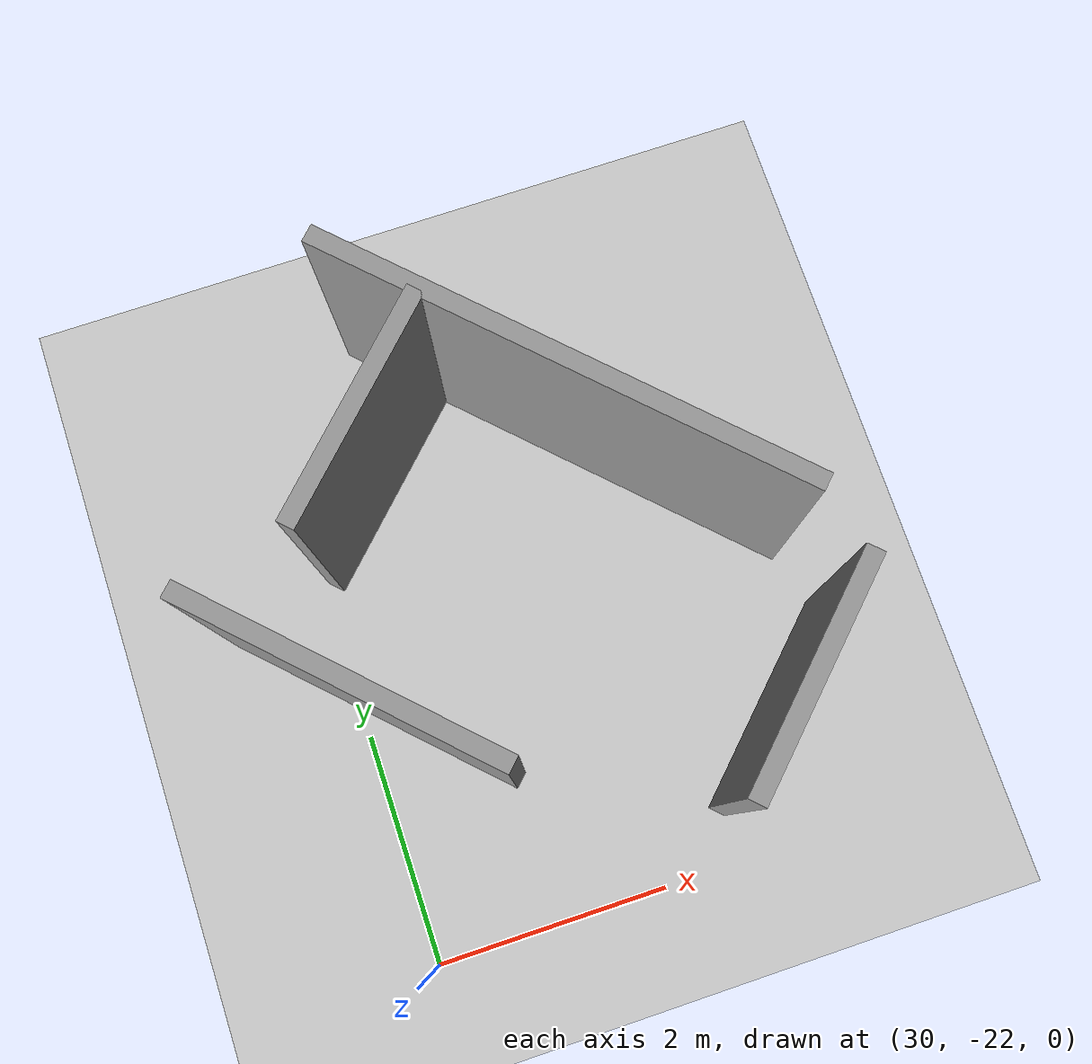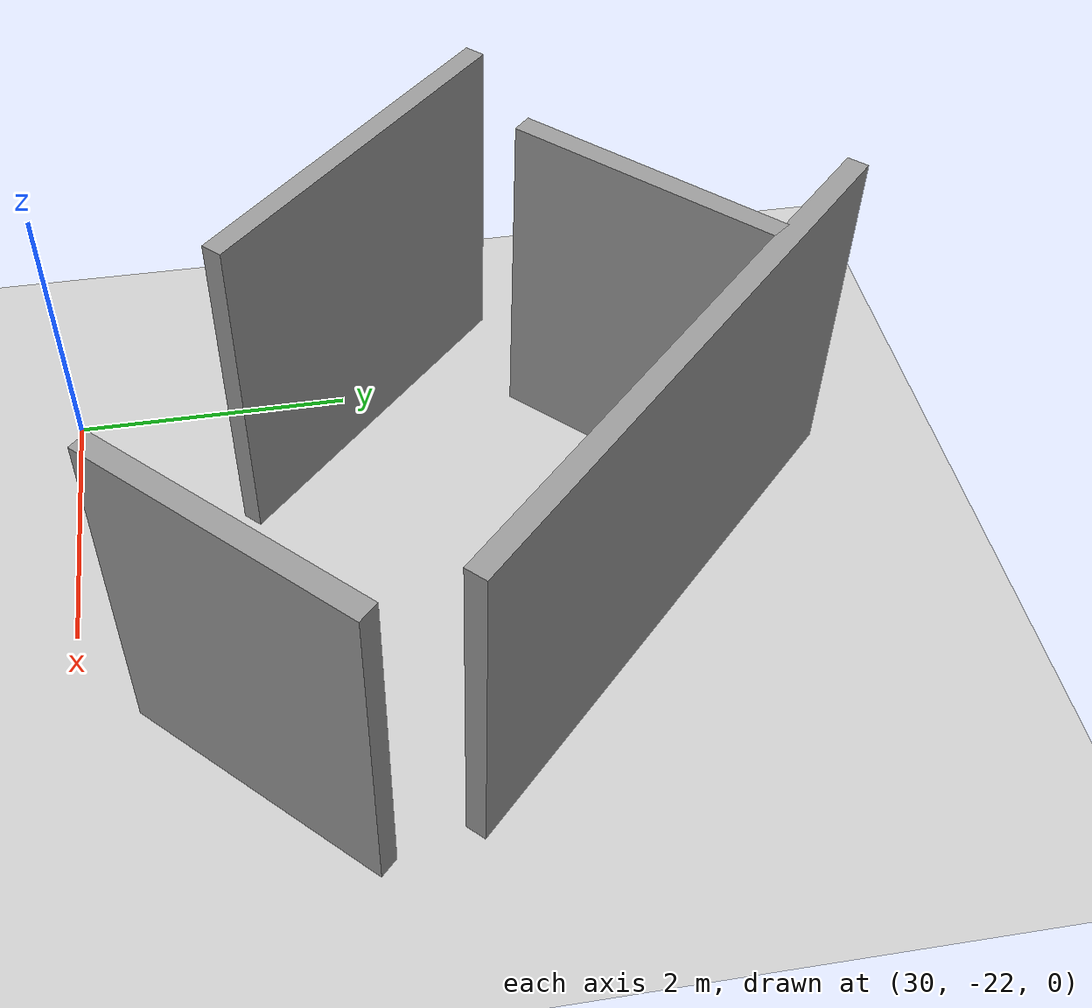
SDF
<sdf version="1.6">
 <world name="default">
  <model name="ground_plane">
   <static>1</static>
   <link name="link">
    <collision name="collision">
     <geometry><plane><normal>0 0 1</normal><size>100 100</size></plane></geometry>
     <surface><friction><ode><mu>100</mu><mu2>50</mu2></ode></friction></surface>
    </collision>
    <visual name="visual">
     <cast_shadows>0</cast_shadows>
     <geometry><plane><normal>0 0 1</normal><size>100 100</size></plane></geometry>
     <material>
      <script><uri>file://media/materials/scripts/gazebo.material</uri><name>Gazebo/Grey</name></script>
     </material>
    </visual>
   </link>
  </model>
  <model name="obs2_5">
   <pose>31.6066 -19.0501 0 0 -0 0</pose>
   <link name="Wall_0">
    <collision name="Wall_0_Collision">
     <geometry><box><size>2 0.15 2.5</size></box></geometry>
     <pose>0 0 1.25 0 -0 0</pose>
    </collision>
    <visual name="Wall_0_Visual">
     <pose>0 0 1.25 0 -0 0</pose>
     <geometry><box><size>2 0.15 2.5</size></box></geometry>
     <material>
      <script><uri>file://media/materials/scripts/gazebo.material</uri><name>Gazebo/Grey</name></script>
      <ambient>1 1 1 1</ambient>
     </material>
    </visual>
    <pose>-0.796332 1.10862 0 0 -0 0.785398</pose>
   </link>
   <link name="Wall_2">
    <collision name="Wall_2_Collision">
     <geometry><box><size>4.25 0.15 2.5</size></box></geometry>
     <pose>0 0 1.25 0 -0 0</pose>
    </collision>
    <visual name="Wall_2_Visual">
     <pose>0 0 1.25 0 -0 0</pose>
     <geometry><box><size>4.25 0.15 2.5</size></box></geometry>
     <material>
      <script><uri>file://media/materials/scripts/gazebo.material</uri><name>Gazebo/Grey</name></script>
      <ambient>1 1 1 1</ambient>
     </material>
    </visual>
    <pose>0.773928 0.982661 0 0 0 -0.785398</pose>
   </link>
   <link name="Wall_4">
    <collision name="Wall_4_Collision">
     <geometry><box><size>2.75 0.15 2.5</size></box></geometry>
     <pose>0 0 1.25 0 -0 0</pose>
    </collision>
    <visual name="Wall_4_Visual">
     <pose>0 0 1.25 0 -0 0</pose>
     <geometry><box><size>2.75 0.15 2.5</size></box></geometry>
     <material>
      <script><uri>file://media/materials/scripts/gazebo.material</uri><name>Gazebo/Grey</name></script>
      <ambient>1 1 1 1</ambient>
     </material>
    </visual>
    <pose>-1.45556 -0.740711 0 0 0 -0.785398</pose>
   </link>
   <link name="Wall_6">
    <collision name="Wall_6_Collision">
     <geometry><box><size>2 0.15 2.5</size></box></geometry>
     <pose>0 0 1.25 0 -0 0</pose>
    </collision>
    <visual name="Wall_6_Visual">
     <pose>0 0 1.25 0 -0 0</pose>
     <geometry><box><size>2 0.15 2.5</size></box></geometry>
     <material>
      <script><uri>file://media/materials/scripts/gazebo.material</uri><name>Gazebo/Grey</name></script>
      <ambient>1 1 1 1</ambient>
     </material>
    </visual>
    <pose>1.72073 -1.77816 0 0 -0 0.785398</pose>
   </link>
   <static>1</static>
  </model>
 </world>
</sdf>
